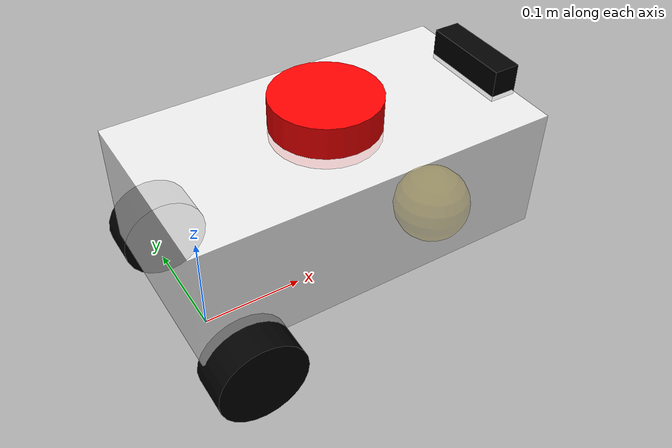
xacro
<?xml version="1.0"?>
<robot xmlns:xacro="http://www.ros.org/wiki/xacro"  name="robot">
    <xacro:include filename="material.xacro"/>
    <xacro:include filename="robot_core.xacro"/>
    <xacro:include filename="lidar.xacro" />
    <xacro:include filename="camera.xacro" />
    <xacro:include filename="ros2_control_real.xacro" />
</robot>

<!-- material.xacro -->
<robot xmlns:xacro="http://www.ros.org/wiki/xacro">

   <material name="white">
        <color rgba="1.0 1.0 1.0 0.8"/>
   </material>

   <material name="gold">
        <color rgba="1.0 0.8 0 1.0"/>
   </material>

   <material name="black">
        <color rgba="0 0 0 1"/>
   </material>

   <material name="silver">
        <color rgba="0.75 0.75 0.75 1.0"/>
   </material>

   <material name="red">
        <color rgba="1 0.0 0.0 1.0"/>
   </material>

</robot>

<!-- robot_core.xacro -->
<robot xmlns:xacro="http://www.ros.org/wiki/xacro">

    <xacro:include filename="inertial.xacro"/>
    <!-- base link -->

    <link name="base_link">
    </link>

    <!-- chassis link -->
    <joint name="chassis_joint" type="fixed">
        <parent link="base_link"/>
        <child link="chassis"/>
        <origin xyz="0.13 0.0 0.12"/>
    </joint>

    <link name="chassis">
        <visual>
            <origin xyz="0 0.0 0"/>
            <geometry>
                <box size="0.34 0.18 0.12"/>
            </geometry>
            <material name="white"/>
        </visual>
        <collision>
            <origin xyz="0.13 0.0 0.12"/>
            <geometry>
                <box size="0.34 0.18 0.12"/>
            </geometry>
        </collision>
        <xacro:inertial_box mass="0.5" x="0.3" y="0.3" z="0.15">
            <origin xyz="0.15 0.0 0.075" rpy="0.0 0.0 0.0"/>
        </xacro:inertial_box>
    </link>

    <gazebo reference = "chassis">
        <material>Gazebo/White</material>
    </gazebo>

    <!-- left wheel link -->
     <joint name="left_wheel_joint" type="continuous">
        <parent link="base_link"/>
        <child link="left_wheel"/>
        <origin xyz="0.0 0.1 0.042" rpy="-${pi/2} ${pi} 0.0"/>
        <axis xyz="0.0 0.0 1"/>
     </joint>

     <link name="left_wheel">
        <visual>
            <geometry>
                <cylinder radius="0.042" length="0.04"/>
            </geometry>
            <material name="black"/>
        </visual>
        <collision>
            <geometry>
                <cylinder radius="0.042" length="0.04"/>
            </geometry>
        </collision>
        <xacro:inertial_cylinder mass="0.1" length="0.04" radius="0.05">
            <origin xyz="0.0 0.0 0.0" rpy="0.0 0.0 0.0"/>
        </xacro:inertial_cylinder>
     </link>

     <gazebo reference = "left_wheel">
        <material>Gazebo/Black</material>
    </gazebo>

    <!-- right wheel link -->
     <joint name="right_wheel_joint" type="continuous">
        <parent link="base_link"/>
        <child link="right_wheel"/>
        <origin xyz="0.0 -0.1 0.042" rpy="${pi/2} 0 0.0"/>
        <axis xyz="0.0 0.0 -1"/>
     </joint>

     <link name="right_wheel">
        <visual>
            <geometry>
                <cylinder radius="0.042" length="0.04"/>
            </geometry>
            <material name="black"/>
        </visual>
        <collision>
            <geometry>
                <cylinder radius="0.042" length="0.04"/>
            </geometry>
        </collision>
        <xacro:inertial_cylinder mass="0.1" length="0.04" radius="0.05">
            <origin xyz="0.0 0.0 0.0" rpy="0.0 0.0 0.0"/>
        </xacro:inertial_cylinder>
     </link>

     <gazebo reference = "right_wheel">
        <material>Gazebo/Black</material>
    </gazebo>

    <!-- caster wheel link-->
     <joint name="caster_wheel_link" type="fixed">
        <parent link="chassis"/>
        <child link="caster_wheel"/>
        <origin xyz="0.13 0.0 -0.09"/>

     </joint>

     <link name="caster_wheel">
        <visual>
            <geometry>
                <sphere radius="0.04"/>
            </geometry>
            <material name="gold"/>
        </visual>
        <collision>
            <geometry>
                <sphere radius="0.04"/>
            </geometry>
        </collision>
        <xacro:inertial_sphere mass="0.1" radius="0.04">
            <origin xyz="0.0 0.0 0.0" rpy="0.0 0.0 0.0"/>
        </xacro:inertial_sphere>
     </link>

     <gazebo reference = "caster_wheel">
        <material>Gazebo/Yellow</material>
        <mu1 value = "0.001"/>
        <mu2 value = "0.001"/>
    </gazebo>

</robot>

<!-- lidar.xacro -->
<robot xmlns:xacro="http://www.ros.org/wiki/xacro">
    <joint name="laser_joint" type="fixed">
        <parent link="chassis"/>
        <child link="laser"/>
        <origin xyz="0 0 0.07" rpy="0.0 0.0 ${pi}"/>
    </joint>

    <link name="laser">
        <visual>
            <geometry>
                <cylinder radius="0.05" length="0.04"/>
            </geometry>
            <material name="red"/>
        </visual>
        <collision>
            <geometry>
                <cylinder radius="0.05" length="0.04"/>
            </geometry>
        </collision>
        <xacro:inertial_cylinder mass="0.1" length="0.04" radius="0.05">
            <origin xyz="0.0 0.0 0.0" rpy="0.0 0.0 0.0"/>
        </xacro:inertial_cylinder>
    </link>
    <gazebo reference = "laser">
        <material>Gazebo/Red</material>
        <sensor name='rplidar_c1' type='gpu_lidar'>
            <pose>0 0 0 0 0 0</pose>
            <topic>scan</topic>
            <update_rate>10</update_rate>
            <gz_frame_id>laser</gz_frame_id>
            <ray>
                <scan>
                <horizontal>
                    <samples>500</samples> <resolution>1</resolution>
                    <min_angle>-3.14159</min_angle> <max_angle>3.14159</max_angle>  </horizontal>
                </scan>
                <range>
                <min>0.05</min> <max>12.0</max> <resolution>0.01</resolution>
                </range>
            </ray>
            <always_on>1</always_on>
            <visualize>true</visualize>
        </sensor>
    </gazebo>
</robot>

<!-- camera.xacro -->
<robot xmlns:xacro="http://www.ros.org/wiki/xacro">
    <joint name="camera_joint" type="fixed">
        <parent link="chassis"/>
        <child link="camera"/>
        <origin xyz="0.16 0 0.07" rpy="0.0 0.0 0.0"/>
    </joint>

    <link name="camera">
        <visual>
            <geometry>
                <box size="0.025 0.086 0.03"/>
            </geometry>
            <material name="black"/>
        </visual>
        <collision>
            <geometry>
                <box size="0.086 0.025 0.03"/>
            </geometry>
        </collision>
        <xacro:inertial_box mass="0.1" x="0.01" y="0.03" z="0.03">
            <origin xyz="0.0 0.0 0.0" rpy="0.0 0.0 0.0"/>
        </xacro:inertial_box>
    </link>

    <joint name="camera_optical_joint" type="fixed">
        <parent link="camera"/>
        <child link="camera_optical"/>
        <origin xyz="0.0 0 0.0" rpy="${-pi/2} 0.0 ${-pi/2}"/>
    </joint>

    <link name="camera_optical">

    </link>

    <gazebo reference = "camera">
        <material>Gazebo/Red</material>
        <sensor name="camera" type="camera">
            <pose> 0 0 0 0 0 0 </pose>
            <visualize>true</visualize>
            <update_rate>30</update_rate>
            <camera>
                <horizontal_fov>1.57</horizontal_fov> <image>
                    <format>R8G8B8</format>
                    <width>640</width>
                    <height>480</height>
                </image>
                <clip>
                    <near>0.05</near>
                    <far>8.0</far>
                </clip>
            </camera>
            <topic>camera/image_raw</topic>
            <gz_frame_id>camera_link_optical</gz_frame_id>
        </sensor>
    </gazebo>
</robot>
